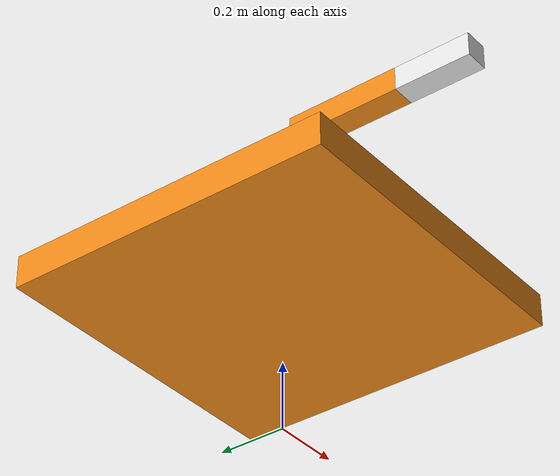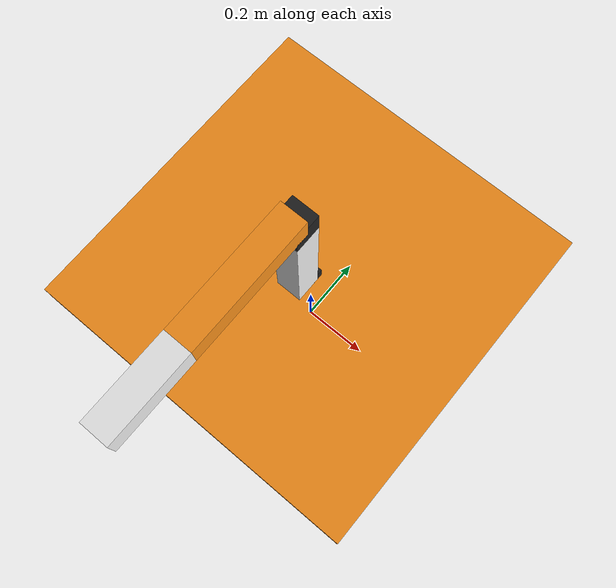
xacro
<?xml version="1.0"?>
<!-- Revolute-Revolute Manipulator -->
<robot name="rrbot" xmlns:xacro="http://www.ros.org/wiki/xacro">

  <!-- Constants for robot dimensions -->
  <xacro:property name="PI" value="3.1415926535897931"/>
  <xacro:property name="mass" value="1" /> <!-- arbitrary value for mass -->
  <xacro:property name="width" value="0.075" /> <!-- Square dimensions (widthxwidth) of beams -->
  <xacro:property name="boxwidth" value="1" /> <!-- Square dimensions (widthxwidth) of beams -->
  <xacro:property name="boxheight" value="0.1" /> <!-- Square dimensions (widthxwidth) of beams -->
  <xacro:property name="width3" value="0.1" /> <!-- Square dimensions (widthxwidth) of beams -->
  <xacro:property name="d1" value="0.47625" /> <!-- Distance from ground to second joint -->
  <xacro:property name="a1" value="0.05398" /> <!-- Horizontal offset from turret to first joint -->
  <xacro:property name="a2" value="0.3857625" /> <!-- First tube length -->
  <xacro:property name="a3" value="0.06985" /> <!-- Vertical offset to next link-->
  <xacro:property name="d4" value="0.358775" /> <!-- 2nd tube length -->
  <xacro:property name="d6" value="0.238125" /> <!-- Distance from dynamixel joint to claw tip -->
  <xacro:property name="dyn" value="0" /> <!-- Dynamixel length -->
  <xacro:property name="axel_offset" value="0.05" /> <!-- Space btw top of beam and the each joint -->
  <xacro:property name="Torque" value = "40" />
  <xacro:property name="vel" value = "10" />

  <!-- Import all Gazebo-customization elements, including Gazebo colors -->
  <xacro:include filename="$(find hal_description)/urdf/hal.gazebo" />
  <!-- Import Rviz colors -->
  <xacro:include filename="$(find hal_description)/urdf/materials.xacro" />

  <!-- Used for fixing robot to Gazebo 'base_link' -->
  <link name="world"/>

  <joint name="fixed" type="fixed">
    <parent link="world"/>
    <child link="link1"/>
  </joint>

  <!-- Base Link -->
  <link name="link1">

    <visual>
      <origin xyz="0 0 ${-boxheight/2 + d1}" rpy="0 0 0"/>
      <geometry>
	<box size="${boxwidth} ${boxwidth} ${boxheight}"/>
      </geometry>
      <material name="orange"/>
    </visual>

    <inertial>
      <origin xyz="0 0 ${-boxheight/2 + d1}" rpy="0 0 0"/>
      <mass value="${mass}"/>
      <inertia
	  ixx="${mass / 12.0 * (boxwidth*boxwidth + boxheight*boxheight)}" ixy="0.0" ixz="0.0"
	  iyy="${mass / 12.0 * (boxheight*boxheight + boxwidth*boxwidth)}" iyz="0.0"
	  izz="${mass / 12.0 * (boxwidth*boxwidth + boxheight*boxheight)}"/>
    </inertial>
  </link>

  <!-- Turret-->
  <joint name="joint1" type="continuous">
    <parent link="link1"/>
    <child link="link2"/>
    <origin xyz="0 0 ${d1}" rpy="0 0 0"/>
    <axis xyz="0 0 1"/>
    <dynamics damping="0.7"/>
  </joint>

  <!-- Turret Box -->
  <link name="link2">
    <collision>
      <origin xyz="0 ${-a1/2} 0" rpy="0 0 0"/>
      <geometry>
	<box size="${width} ${a1} ${width}"/>
      </geometry>
    </collision>

    <visual>
      <origin xyz="0 ${-a1/2} 0" rpy="0 0 0"/>
      <geometry>
	<box size="${width} ${a1} ${width}"/>
      </geometry>
      <material name="black"/>
    </visual>

    <inertial>
      <origin xyz="0 ${-a1/2} 0" rpy="0 0 0"/>
      <mass value="${mass}"/>
      <inertia
	  izz="${mass / 12.0 * (width*width + a1*a1)}" ixy="0.0" ixz="0.0"
	  ixx="${mass / 12.0 * (a1*a1 + width*width)}" iyz="0.0"
	  iyy="${mass / 12.0 * (width*width + width*width)}"/>
    </inertial>
  </link>

  <!-- Turret up/down -->
  <joint name="joint2" type="revolute">
    <parent link="link2"/>
    <child link="link3"/>
    <origin xyz="0 ${-a1} 0" rpy="0 0 0"/>
    <axis xyz="1 0 0"/>
    <dynamics damping="0.7"/>
    <limit effort="${Torque}" velocity="${vel}" lower="${-PI/2}" upper="${PI/2}" />
  </joint>

  <!-- Tube 1  -->
  <link name="link3">
    <collision>
      <origin xyz="0 0 ${a2/2}" rpy="0 0 0"/>
      <geometry>
	<box size="${width} ${width} ${a2}"/>
      </geometry>
    </collision>

    <visual>
      <origin xyz="0 0 ${a2/2}" rpy="0 0 0"/>
      <geometry>
	<box size="${width} ${width} ${a2}"/>
      </geometry>
      <material name="white"/>
    </visual>

    <inertial>
      <origin xyz="0 0 ${a2/2}" rpy="0 0 0"/>
      <mass value="${mass}"/>
      <inertia
	  ixx="${mass / 12.0 * (width*width + a2*a2)}" ixy="0.0" ixz="0.0"
	  iyy="${mass / 12.0 * (a2*a2 + width*width)}" iyz="0.0"
	  izz="${mass / 12.0 * (width*width + width*width)}"/>
    </inertial>
  </link>

  <joint name="joint3" type="revolute">
    <parent link="link3"/>
    <child link="link4"/>
    <origin xyz="0 0 ${a2}" rpy="0 0 0"/>
    <axis xyz="1 0 0"/>
    <dynamics damping="0.7"/>
    <limit effort="${Torque}" velocity="${vel}" lower="${-PI}" upper="${PI}" />
  </joint>

<!-- Offset Length -->
  <link name="link4">
    <collision>
      <origin xyz="0 0 ${a3/2}" rpy="0 0 0"/>
      <geometry>
	<box size="${width} ${width} ${a3}"/>
      </geometry>
    </collision>

    <visual>
      <origin xyz="0 0 ${a3/2}" rpy="0 0 0"/>
      <geometry>
	<box size="${width} ${width} ${a3}"/>
      </geometry>
      <material name="black"/>
    </visual>

    <inertial>
      <origin xyz="0 0 ${a3/2}" rpy="0 0 0"/>
      <mass value="${mass}"/>
      <inertia
	  ixx="${mass / 12.0 * (a3*a3 + a3*a3)}" ixy="0.0" ixz="0.0"
	  iyy="${mass / 12.0 * (a3*a3 + width*width)}" iyz="0.0"
	  izz="${mass / 12.0 * (width*width + width*width)}"/>
    </inertial>
  </link>

  <joint name="joint4" type="continuous">
    <parent link="link4"/>
    <child link="link5"/>
    <origin xyz="0 0 ${a3}" rpy="0 0 0"/>
    <axis xyz="0 1 0"/>
    <dynamics damping="0.7"/>
  </joint>

  <!-- Second Arm -->
  <link name="link5">
    <collision>
      <origin xyz="0 ${-d4/2} 0" rpy="0 0 0"/>
      <geometry>
	<box size="${width} ${d4} ${width}"/>
      </geometry>
    </collision>

    <visual>
      <origin xyz="0 ${-d4/2} 0" rpy="0 0 0"/>
      <geometry>
	<box size="${width} ${d4} ${width}"/>
      </geometry>
      <material name="orange"/>
    </visual>

    <inertial>
      <origin xyz="0 ${-d4/2} 0" rpy="0 0 0"/>
      <mass value="${mass}"/>
      <inertia
	  izz="${mass / 12.0 * (width*width + d4*d4)}" ixy="0.0" ixz="0.0"
	  ixx="${mass / 12.0 * (d4*d4 + width*width)}" iyz="0.0"
	  iyy="${mass / 12.0 * (width*width + width*width)}"/>
    </inertial>
  </link>

  <joint name="joint5" type="continuous">
    <parent link="link5"/>
    <child link="link6"/>
    <origin xyz="0 ${-d4} 0" rpy="0 0 0"/>
    <axis xyz="1 0 0"/>
    <dynamics damping="0.7"/>
  </joint>

   <!-- Zero-Length Link -->
  <link name="link6">
    <collision>
      <origin xyz="0 ${-dyn/2} 0" rpy="0 0 0"/>
      <geometry>
	<box size="${width} ${dyn} ${width}"/>
      </geometry>
    </collision>

    <visual>
      <origin xyz="0 ${-dyn/2} 0" rpy="0 0 0"/>
      <geometry>
	<box size="${width} ${dyn} ${width}"/>
      </geometry>
      <material name="black"/>
    </visual>

    <inertial>
      <origin xyz="0 ${-dyn/2} 0" rpy="0 0 0"/>
      <mass value="${mass}"/>
      <inertia
	  izz="${mass / 12.0 * (width*width + dyn*dyn)}" ixy="0.0" ixz="0.0"
	  ixx="${mass / 12.0 * (dyn*dyn + width*width)}" iyz="0.0"
	  iyy="${mass / 12.0 * (width*width + width*width)}"/>
    </inertial>
  </link>

  <joint name="joint6" type="continuous">
    <parent link="link6"/>
    <child link="link7"/>
    <origin xyz="0 ${-dyn} 0" rpy="0 0 0"/>
    <axis xyz="0 1 0"/>
    <dynamics damping="0.7"/>
  </joint>

   <!-- To Claw Tip -->
  <link name="link7">
    <collision>
      <origin xyz="0 ${-(d6-dyn)/2} 0" rpy="0 0 0"/>
      <geometry>
				<box size="${width} ${d6-dyn} ${width}"/>
      </geometry>
    </collision>

    <visual>
      <origin xyz="0 ${-(d6-dyn)/2} 0" rpy="0 0 0"/>
      <geometry>
				<box size="${width} ${d6-dyn} ${width}"/>
      </geometry>
      <material name="white"/>
    </visual>

    <inertial>
      <origin xyz="0 ${-(d6-dyn)/2} 0" rpy="0 0 0"/>
      <mass value="${mass}"/>
      <inertia
	  izz="${mass / 12.0 * (width*width + (d6-dyn)*(d6-dyn))}" ixy="0.0" ixz="0.0"
	  iyy="${mass / 12.0 * ((d6-dyn)*(d6-dyn) + width*width)}" iyz="0.0"
	  ixx="${mass / 12.0 * (width*width + width*width)}"/>
    </inertial>
  </link>

  <joint name="joint7" type="fixed">
		<parent link="link7"/>
		<child link="end"/>
		<origin xyz="0 ${-(d6-dyn)} 0" rpy="0 0 0"/>
	</joint>

	<!-- Dummy Link to force KDL chain point to tip of claw -->
	<link name="end">
		<visual>
			<geometry>
				<box size="0 0 0"/>
			</geometry>
		</visual>
		<inertial>
			<origin xyz="0 0 0" rpy="0 0 0"/>
			<mass value="0"/>
			<inertia
				ixx="0" ixy="0" ixz="0"
				iyy="0" iyz="0"
				izz="0"
			/>
		</inertial>
	</link>

</robot>
